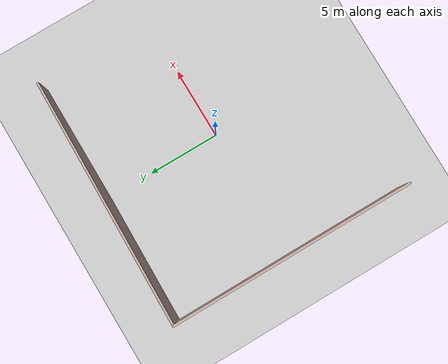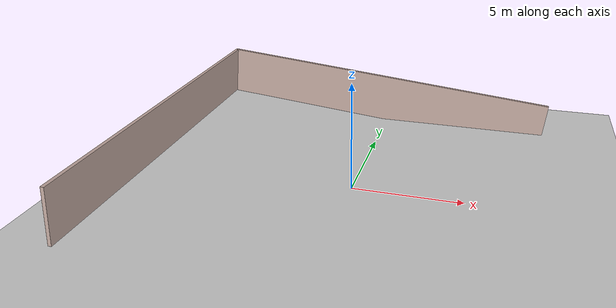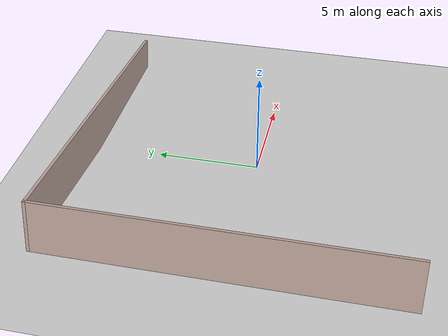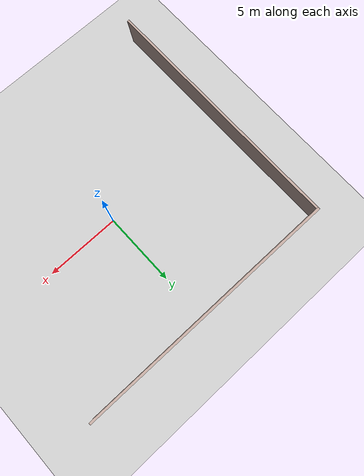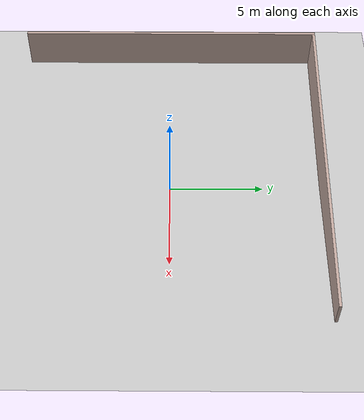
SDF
<?xml version="1.0" ?>
<sdf version="1.4">
  <world name="default">
    <physics type='ode'>
      <gravity>0 0 -9.81</gravity>
      <!-- max step size has to be a multiple of the desired task rate-->
      <max_step_size>0.001</max_step_size>
      <real_time_factor>1</real_time_factor>
    </physics>
    <!-- A global light source -->
    <include>
      <uri>model://sun</uri>
    </include>
    <!-- A ground plane -->
    <include>
      <uri>model://ground_plane</uri>
    </include>
    <include>
      <name>wall</name>
      <uri>model://wall</uri>
      <pose>-0.45 0.0 0.0   0 0.1 0</pose>
    </include>

  </world>
</sdf>

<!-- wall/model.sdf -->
<sdf version='1.6'>
  <model name='wall'>
    <pose frame=''>-1.26581 1.80502 0 0 -0 0</pose>
    <link name='Wall_0'>
      <collision name='Wall_0_Collision'>
        <geometry>
          <box>
            <size>16.5 0.15 2.5</size>
          </box>
        </geometry>
        <pose frame=''>0 0 1.25 0 -0 0</pose>
      </collision>
      <visual name='Wall_0_Visual'>
        <pose frame=''>0 0 1.25 0 -0 0</pose>
        <geometry>
          <box>
            <size>16.5 0.15 2.5</size>
          </box>
        </geometry>
        <material>
          <script>
            <uri>file://media/materials/scripts/gazebo.material</uri>
            <name>Gazebo/Grey</name>
          </script>
          <ambient>0.760784 0.662745 0.627451 1</ambient>
        </material>
        <meta>
          <layer>0</layer>
        </meta>
      </visual>
      <pose frame=''>-8.71419 -1.8e-05 0 0 0 -1.5708</pose>
    </link>
    <link name='Wall_2'>
      <collision name='Wall_2_Collision'>
        <geometry>
          <box>
            <size>17.5784 0.15 2.5</size>
          </box>
        </geometry>
        <pose frame=''>0 0 1.25 0 -0 0</pose>
      </collision>
      <visual name='Wall_2_Visual'>
        <pose frame=''>0 0 1.25 0 -0 0</pose>
        <geometry>
          <box>
            <size>17.5784 0.15 2.5</size>
          </box>
        </geometry>
        <material>
          <script>
            <uri>file://media/materials/scripts/gazebo.material</uri>
            <name>Gazebo/Grey</name>
          </script>
          <ambient>0.760784 0.662745 0.627451 1</ambient>
        </material>
        <meta>
          <layer>0</layer>
        </meta>
      </visual>
      <pose frame=''>0 8.17066 0 0 0 -0.000496</pose>
    </link>
    <static>1</static>
  </model>
</sdf>
